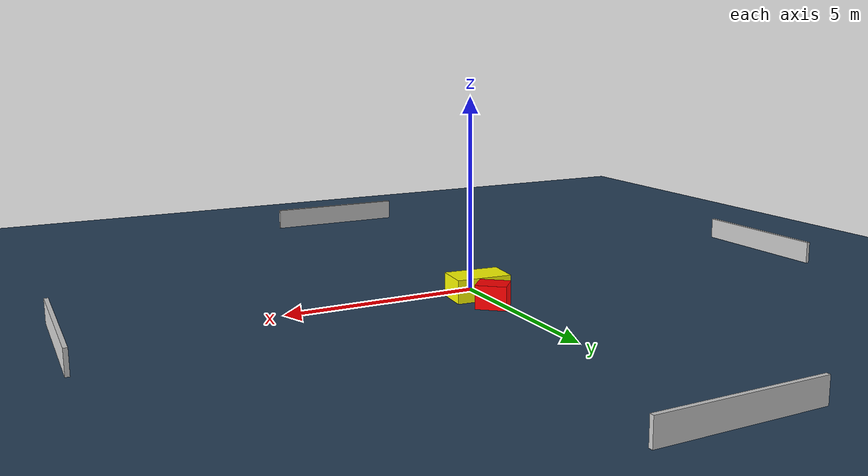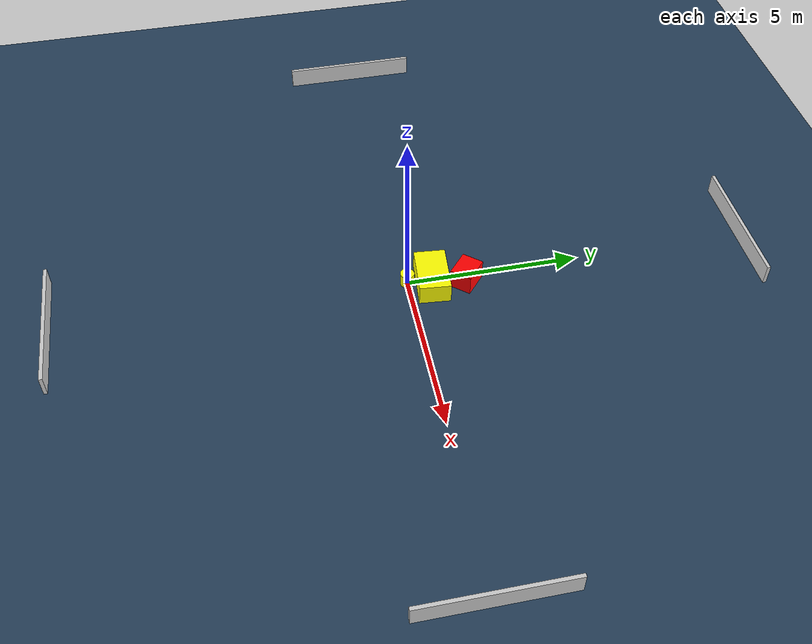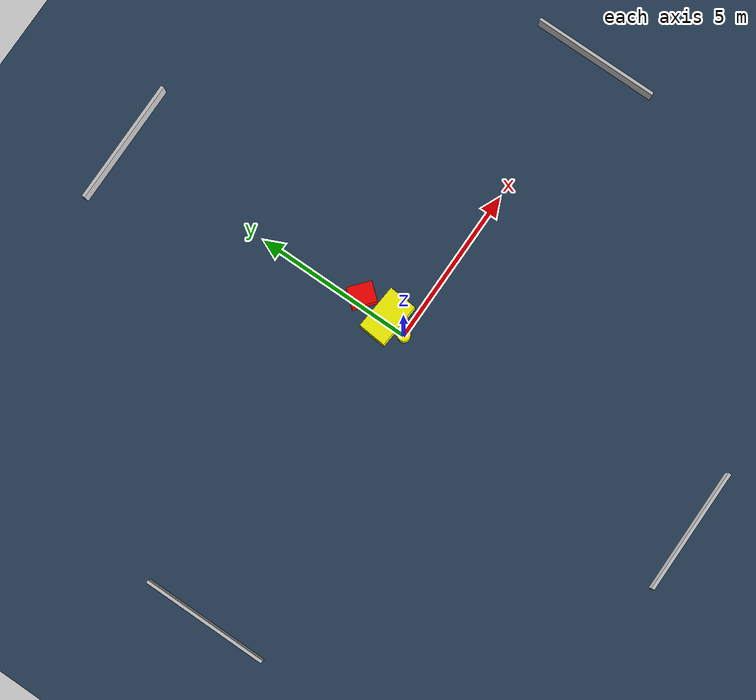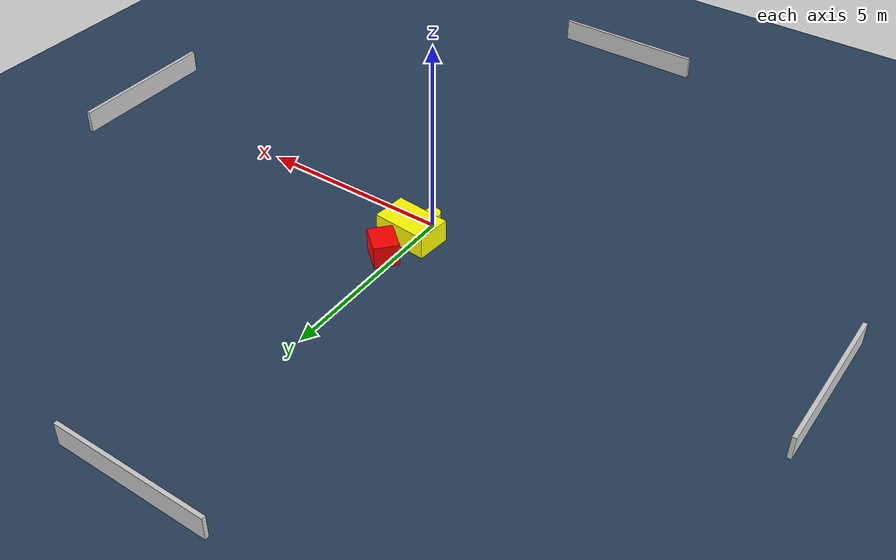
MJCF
<?xml version="1.0" ?>
<mujoco model="generated_environment">
  <option timestep="0.01" integrator="RK4" cone="elliptic"/>
  <default>
    <geom density="1"/>
  </default>
  <asset>
    <texture builtin="gradient" height="3072" name="skybox" rgb1="0.3 0.5 0.7" rgb2="0 0 0" type="skybox" width="512"/>
    <texture builtin="checker" height="300" name="groundplane" rgb1="0.2 0.3 0.4" rgb2="0.1 0.2 0.3" type="2d" width="300"/>
    <material name="groundplane" reflectance="0.2" texrepeat="5 5" texture="groundplane"/>
  </asset>
  <worldbody>
    <light dir="0 0 -1" directional="true" pos="0 0 1.5"/>
    <geom condim="3" friction="0.5 0.005 0.001" material="groundplane" name="floor" pos="0 0 0" size="0 0 0.05" type="plane"/>
    <body name="walls">
      <geom name="wall_1" condim="4" pos="-10.0 0.0 0.3" rgba="0.800000011920929 0.800000011920929 0.800000011920929 1.0" size="0.05 2.0 0.3" type="box"/>
      <geom name="wall_2" condim="4" pos="10.0 0.0 0.3" rgba="0.800000011920929 0.800000011920929 0.800000011920929 1.0" size="0.05 2.0 0.3" type="box"/>
      <geom name="wall_3" condim="4" pos="0.0 -10.0 0.3" rgba="0.800000011920929 0.800000011920929 0.800000011920929 1.0" size="2.0 0.05 0.3" type="box"/>
      <geom name="wall_4" condim="4" pos="0.0 10.0 0.3" rgba="0.800000011920929 0.800000011920929 0.800000011920929 1.0" size="2.0 0.05 0.3" type="box"/>
    </body>
    <body name="robot">
      <joint name="joint_x" type="slide" pos="0 0 0" axis="1 0 0"/>
      <joint name="joint_y" type="slide" pos="0 0 0" axis="0 1 0"/>
      <geom name="robot" type="cylinder" pos="0.0 0.0 0.2" size="0.2 0.2 0.0" mass="5.0" friction="1.0 0.005 0.0001" condim="4" rgba="1.0 1.0 0.0 1.0"/>
    </body>
    <body name="obstacle_1_movable">
      <geom name="obstacle_1_movable" condim="4" pos="0.15513012260213674 0.6865935997718725 0.3" euler="0 0 265.04275939888834" friction="0.0 0.005 0.001" rgba="1.0 1.0 0.0 1.0" size="0.44960594457494607 0.7163129226258456 0.3" type="box" mass="0.1"/>
      <joint type="free"/>
    </body>
    <body name="obstacle_2_static">
      <geom name="obstacle_2_static" condim="4" pos="0.25648279074724345 1.6613690809192962 0.3" euler="0 0 49.719756557955904" friction="0.0 0.005 0.001" rgba="1.0 0.0 0.0 1.0" size="0.3145354283853108 0.3885515088946966 0.3" type="box"/>
    </body>
  </worldbody>
  <actuator>
    <motor name="actuator_x" joint="joint_x" gear="1" ctrlrange="-1 1"/>
    <motor name="actuator_y" joint="joint_y" gear="1" ctrlrange="-1 1"/>
  </actuator>
</mujoco>
